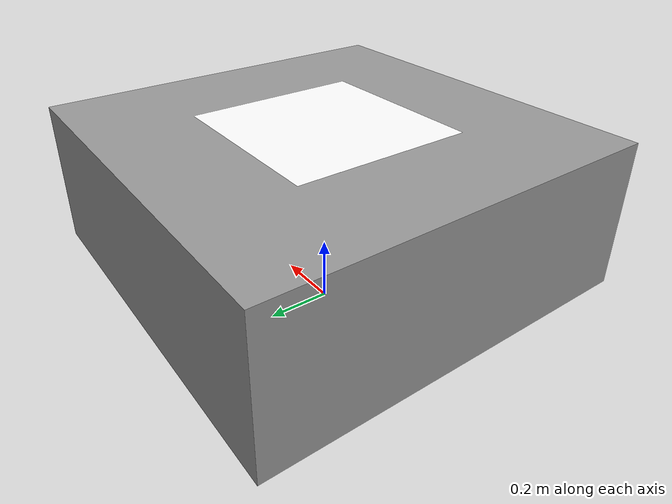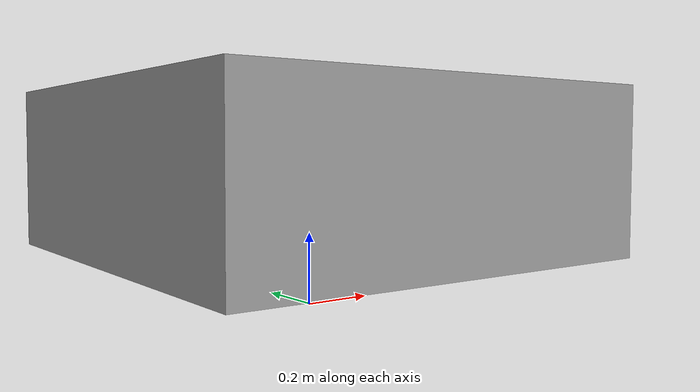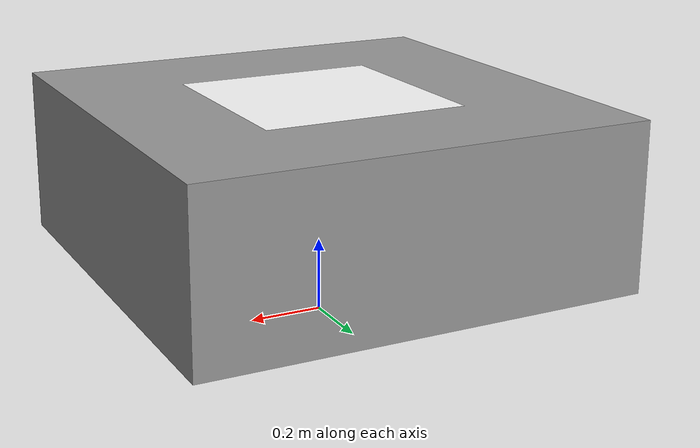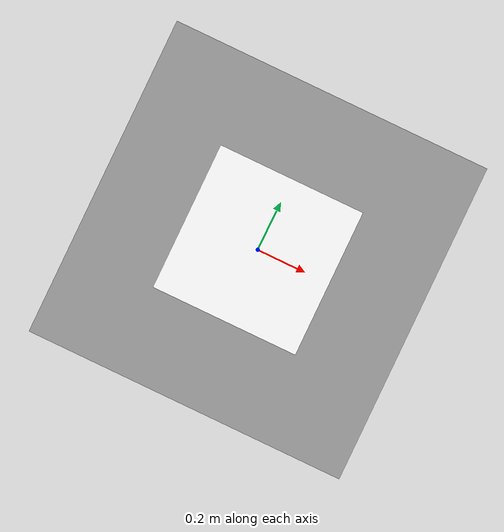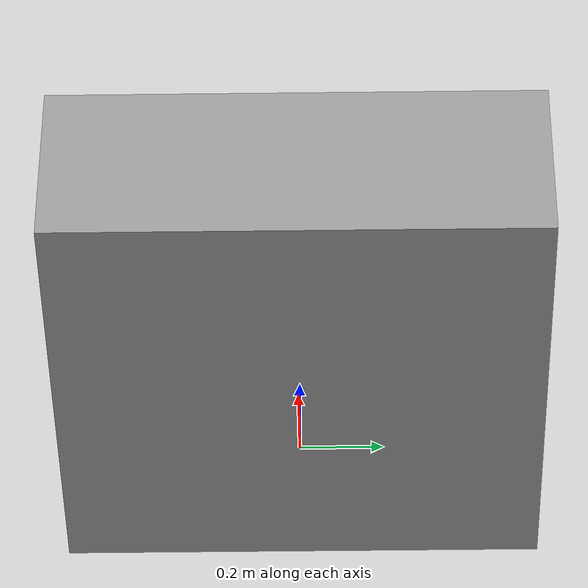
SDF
<?xml version='1.0'?>
<sdf version='1.5'>
  <model name='aruco_1'>

    <link name='marker'>
      <pose frame=''>0 0 0.6 0 0 0</pose>
      <visual name='visual'>
        <geometry>
          <box>
            <size>0.55 0.55 1e-5</size>
          </box>
        </geometry>
        <material>
          <script>
            <uri>model://aruco_1/materials/scripts</uri>
            <uri>model://aruco_1/materials/textures</uri>
            <name>Aruco1/Marker</name>
          </script>
          <ambient>1 1 1 1</ambient>
          <diffuse>1 1 1 1</diffuse>
          <specular>0 0 0 1</specular>
          <emissive>1 1 1 0</emissive>
          <shader type='vertex'>
            <normal_map>__default__</normal_map>
          </shader>
        </material>
        <pose frame=''>0 0 0 0 -0 0</pose>
        <cast_shadows>1</cast_shadows>
        <transparency>0</transparency>
      </visual>
      <collision name='collision'>
        <laser_retro>0</laser_retro>
        <max_contacts>10</max_contacts>
        <pose frame=''>0 0 0 0 -0 0</pose>
        <geometry>
          <box>
            <size>0.55 0.55 1e-05</size>
          </box>
        </geometry>
      </collision>
    </link>
    <link name='marker_pad'>
      <inertial>
        <mass>20.0</mass>
      </inertial>
      <pose frame='marker'>0 0 -0.225 0 -0 0</pose>
      <visual name='visual'>
        <geometry>
          <box>
            <size>1.2 1.2 0.45</size>
          </box>
        </geometry>
        <material>
          <lighting>1</lighting>
          <script>
            <uri>file://media/materials/scripts/gazebo.material</uri>
            <name>Gazebo/Grey</name>
          </script>
        </material>
        <cast_shadows>1</cast_shadows>
        <transparency>0</transparency>
      </visual>
      <collision name='collision'>
        <laser_retro>0</laser_retro>
        <max_contacts>10</max_contacts>
        <pose frame=''>0 0 0 0 -0 0</pose>
        <geometry>
          <box>
            <size>1.2 1.2 0.45</size>
          </box>
        </geometry>
      </collision>
    </link>

    <joint name='marker_JOINT_marker_pad' type='revolute'>
      <parent>marker</parent>
      <child>marker_pad</child>
      <pose frame=''>0 0 0 0 -0 0</pose>
      <axis>
        <xyz>0 0 1</xyz>
        <limit>
          <upper>0</upper>
          <lower>0</lower>
        </limit>
      </axis>
    </joint>

    <static>1</static>
    <allow_auto_disable>1</allow_auto_disable>

  </model>
</sdf>
